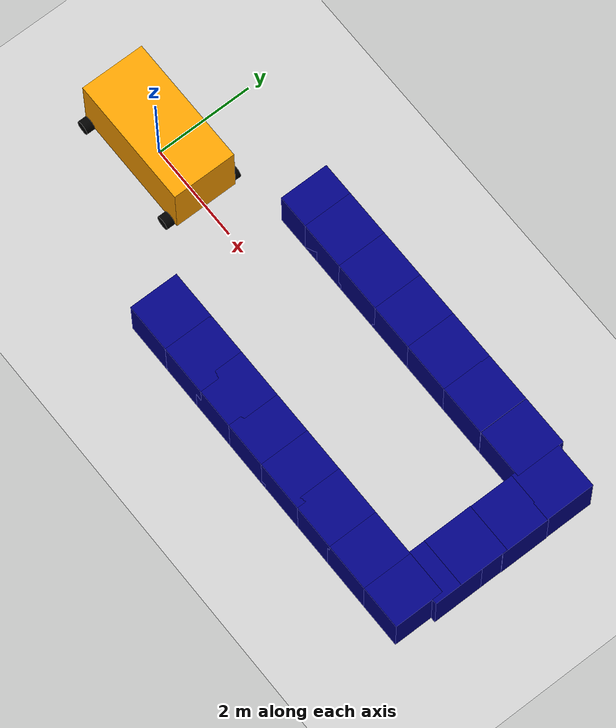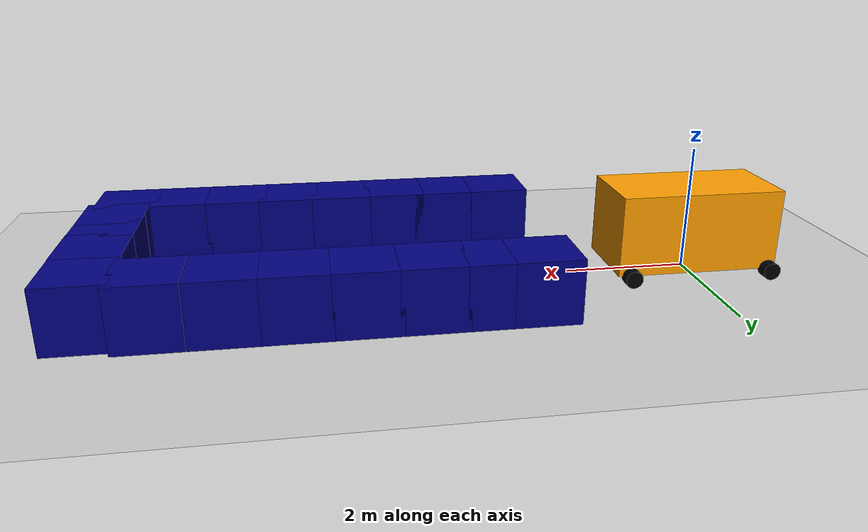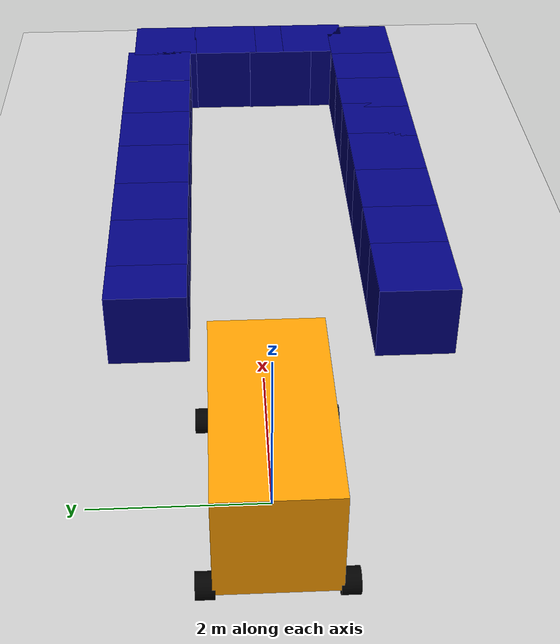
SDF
<sdf version='1.9'>
  <world name='empty'>
    <physics name='1ms' type='ignored'>
      <max_step_size>0.001</max_step_size>
      <real_time_factor>1</real_time_factor>
      <real_time_update_rate>1000</real_time_update_rate>
    </physics>
    <plugin name='gz::sim::systems::Physics' filename='ignition-gazebo-physics-system'/>
    <plugin name='gz::sim::systems::UserCommands' filename='ignition-gazebo-user-commands-system'/>
    <plugin name='gz::sim::systems::SceneBroadcaster' filename='ignition-gazebo-scene-broadcaster-system'/>
    <plugin name='gz::sim::systems::Contact' filename='ignition-gazebo-contact-system'/>
    <gravity>0 0 -9.8</gravity>
    <magnetic_field>6e-06 2.3e-05 -4.2e-05</magnetic_field>
    <atmosphere type='adiabatic'/>
    <scene>
      <ambient>0.4 0.4 0.4 1</ambient>
      <background>0.7 0.7 0.7 1</background>
      <shadows>true</shadows>
    </scene>
    <model name='ground_plane'>
      <static>true</static>
      <link name='link'>
        <collision name='collision'>
          <geometry>
            <plane>
              <normal>0 0 1</normal>
              <size>100 100</size>
            </plane>
          </geometry>
          <surface>
            <friction>
              <ode/>
            </friction>
            <bounce/>
            <contact/>
          </surface>
        </collision>
        <visual name='visual'>
          <geometry>
            <plane>
              <normal>0 0 1</normal>
              <size>100 100</size>
            </plane>
          </geometry>
          <material>
            <ambient>0.8 0.8 0.8 1</ambient>
            <diffuse>0.8 0.8 0.8 1</diffuse>
            <specular>0.8 0.8 0.8 1</specular>
          </material>
        </visual>
        <pose>0 0 0 0 -0 0</pose>
        <inertial>
          <pose>0 0 0 0 -0 0</pose>
          <mass>1</mass>
          <inertia>
            <ixx>1</ixx>
            <ixy>0</ixy>
            <ixz>0</ixz>
            <iyy>1</iyy>
            <iyz>0</iyz>
            <izz>1</izz>
          </inertia>
        </inertial>
        <enable_wind>false</enable_wind>
      </link>
      <pose>0 0 0 0 -0 0</pose>
      <self_collide>false</self_collide>
    </model>
    <model name='itls_gazebo_urdf'>
      <link name='base_link'>
        <inertial>
          <pose>-0.035 0 0.609609 0 -0 0</pose>
          <mass>1600</mass>
          <inertia>
            <ixx>515.00199999999995</ixx>
            <ixy>5.4711799999999995e-13</ixy>
            <ixz>-73.153099999999995</ixz>
            <iyy>2525.1799999999998</iyy>
            <iyz>-2.219e-17</iyz>
            <izz>2537.4200000000001</izz>
          </inertia>
        </inertial>
        <collision name='base_link_fixed_joint_lump__robot_center_collision'>
          <pose>0.04000000000000004 0 0.65025 0 0 0</pose>
          <geometry>
            <box>
              <size>2.64 1.3005 1.3</size>
            </box>
          </geometry>
          <surface>
            <friction>
              <ode/>
            </friction>
            <bounce/>
            <contact/>
          </surface>
        </collision>
        <collision name='base_link_fixed_joint_lump__rearwhl_l_link_collision_1'>
          <pose>-1.16 0.7202500000000001 0 1.570796326794896 0 0</pose>
          <geometry>
            <cylinder>
              <length>0.20000000000000001</length>
              <radius>0.14000000000000001</radius>
            </cylinder>
          </geometry>
          <surface>
            <friction>
              <ode/>
            </friction>
            <bounce/>
            <contact/>
          </surface>
        </collision>
        <collision name='base_link_fixed_joint_lump__rearwhl_r_link_collision_2'>
          <pose>-1.16 -0.7202500000000001 0 1.570796326794896 0 0</pose>
          <geometry>
            <cylinder>
              <length>0.20000000000000001</length>
              <radius>0.14000000000000001</radius>
            </cylinder>
          </geometry>
          <surface>
            <friction>
              <ode/>
            </friction>
            <bounce/>
            <contact/>
          </surface>
        </collision>
        <visual name='base_link_fixed_joint_lump__robot_center_visual'>
          <pose>0.04000000000000004 0 0.65025 0 0 0</pose>
          <geometry>
            <box>
              <size>2.64 1.3005 1.3</size>
            </box>
          </geometry>
          <material>
            <diffuse>1 0.625 0 1</diffuse>
            <ambient>1 0.625 0 1</ambient>
          </material>
        </visual>
        <visual name='base_link_fixed_joint_lump__rearwhl_l_link_visual_1'>
          <pose>-1.16 0.7202500000000001 0 1.570796326794896 0 0</pose>
          <geometry>
            <cylinder>
              <length>0.20000000000000001</length>
              <radius>0.14000000000000001</radius>
            </cylinder>
          </geometry>
          <material>
            <diffuse>0 0 0 1</diffuse>
            <ambient>0 0 0 1</ambient>
          </material>
        </visual>
        <visual name='base_link_fixed_joint_lump__rearwhl_r_link_visual_2'>
          <pose>-1.16 -0.7202500000000001 0 1.570796326794896 0 0</pose>
          <geometry>
            <cylinder>
              <length>0.20000000000000001</length>
              <radius>0.14000000000000001</radius>
            </cylinder>
          </geometry>
          <material>
            <diffuse>0 0 0 1</diffuse>
            <ambient>0 0 0 1</ambient>
          </material>
        </visual>
        <pose>0 0 0 0 -0 0</pose>
        <enable_wind>false</enable_wind>
      </link>
      <joint name='frontwhl_l_joint' type='revolute'>
        <pose>0 0 0 0 -0 0</pose>
        <parent>base_link</parent>
        <child>frontwhl_l_link</child>
        <axis>
          <xyz>0 1 0</xyz>
          <limit>
            <lower>-10000000000000000</lower>
            <upper>10000000000000000</upper>
            <effort>inf</effort>
            <velocity>inf</velocity>
            <stiffness>100000000</stiffness>
            <dissipation>1</dissipation>
          </limit>
          <dynamics>
            <spring_reference>0</spring_reference>
            <spring_stiffness>0</spring_stiffness>
            <damping>0</damping>
            <friction>0</friction>
          </dynamics>
        </axis>
      </joint>
      <link name='frontwhl_l_link'>
        <pose>1.16 0.72025 0 0 -0 0</pose>
        <inertial>
          <pose>0 0 0 1.5708 -0 0</pose>
          <mass>50</mass>
          <inertia>
            <ixx>0.41166700000000001</ixx>
            <ixy>0</ixy>
            <ixz>0</ixz>
            <iyy>0.41166700000000001</iyy>
            <iyz>0</iyz>
            <izz>0.48999999999999999</izz>
          </inertia>
        </inertial>
        <collision name='frontwhl_l_link_collision'>
          <pose>0 0 0 1.570796326794896 0 0</pose>
          <geometry>
            <cylinder>
              <length>0.20000000000000001</length>
              <radius>0.14000000000000001</radius>
            </cylinder>
          </geometry>
          <surface>
            <friction>
              <ode/>
            </friction>
            <bounce/>
            <contact/>
          </surface>
        </collision>
        <visual name='frontwhl_l_link_visual'>
          <pose>0 0 0 1.570796326794896 0 0</pose>
          <geometry>
            <cylinder>
              <length>0.20000000000000001</length>
              <radius>0.14000000000000001</radius>
            </cylinder>
          </geometry>
          <material>
            <diffuse>0 0 0 1</diffuse>
            <ambient>0 0 0 1</ambient>
          </material>
        </visual>
        <enable_wind>false</enable_wind>
      </link>
      <joint name='frontwhl_r_joint' type='revolute'>
        <pose>0 0 0 0 -0 0</pose>
        <parent>base_link</parent>
        <child>frontwhl_r_link</child>
        <axis>
          <xyz>0 1 0</xyz>
          <limit>
            <lower>-10000000000000000</lower>
            <upper>10000000000000000</upper>
            <effort>inf</effort>
            <velocity>inf</velocity>
            <stiffness>100000000</stiffness>
            <dissipation>1</dissipation>
          </limit>
          <dynamics>
            <spring_reference>0</spring_reference>
            <spring_stiffness>0</spring_stiffness>
            <damping>0</damping>
            <friction>0</friction>
          </dynamics>
        </axis>
      </joint>
      <link name='frontwhl_r_link'>
        <pose>1.16 -0.72025 0 0 -0 0</pose>
        <inertial>
          <pose>0 0 0 1.5708 -0 0</pose>
          <mass>50</mass>
          <inertia>
            <ixx>0.41166700000000001</ixx>
            <ixy>0</ixy>
            <ixz>0</ixz>
            <iyy>0.41166700000000001</iyy>
            <iyz>0</iyz>
            <izz>0.48999999999999999</izz>
          </inertia>
        </inertial>
        <collision name='frontwhl_r_link_collision'>
          <pose>0 0 0 1.570796326794896 0 0</pose>
          <geometry>
            <cylinder>
              <length>0.20000000000000001</length>
              <radius>0.14000000000000001</radius>
            </cylinder>
          </geometry>
          <surface>
            <friction>
              <ode/>
            </friction>
            <bounce/>
            <contact/>
          </surface>
        </collision>
        <visual name='frontwhl_r_link_visual'>
          <pose>0 0 0 1.570796326794896 0 0</pose>
          <geometry>
            <cylinder>
              <length>0.20000000000000001</length>
              <radius>0.14000000000000001</radius>
            </cylinder>
          </geometry>
          <material>
            <diffuse>0 0 0 1</diffuse>
            <ambient>0 0 0 1</ambient>
          </material>
        </visual>
        <enable_wind>false</enable_wind>
      </link>
      <frame name='base_joint' attached_to='base_link'>
        <pose>0 0 -0.14 0 -0 0</pose>
      </frame>
      <frame name='base_footprint' attached_to='base_joint'/>
      <frame name='base_link_T_base_link_back' attached_to='base_link'>
        <pose>-1.7645 0 0 0 -0 3.14159</pose>
      </frame>
      <frame name='base_link_back' attached_to='base_link_T_base_link_back'/>
      <frame name='base_link_T_base_link_front' attached_to='base_link'>
        <pose>2.3715 0 0 0 -0 0</pose>
      </frame>
      <frame name='base_link_front' attached_to='base_link_T_base_link_front'/>
      <frame name='base_link_T_robot_center' attached_to='base_link'>
        <pose>0.04 0 0.65025 0 -0 0</pose>
      </frame>
      <frame name='robot_center' attached_to='base_link_T_robot_center'/>
      <frame name='rearwhl_l_joint' attached_to='base_link'>
        <pose>-1.16 0.72025 0 0 -0 0</pose>
      </frame>
      <frame name='rearwhl_l_link' attached_to='rearwhl_l_joint'/>
      <frame name='rearwhl_r_joint' attached_to='base_link'>
        <pose>-1.16 -0.72025 0 0 -0 0</pose>
      </frame>
      <frame name='rearwhl_r_link' attached_to='rearwhl_r_joint'/>
      <pose>0 0 0.14 0 -0 0</pose>
      <static>false</static>
      <self_collide>false</self_collide>
    </model>
    <model name='box'>
      <pose>2.86 -1.9 0.5 0 -0 0</pose>
      <link name='box_link'>
        <inertial>
          <inertia>
            <ixx>0.16666</ixx>
            <ixy>0</ixy>
            <ixz>0</ixz>
            <iyy>0.16666</iyy>
            <iyz>0</iyz>
            <izz>0.16666</izz>
          </inertia>
          <mass>1</mass>
          <pose>0 0 0 0 -0 0</pose>
        </inertial>
        <collision name='box_collision'>
          <geometry>
            <box>
              <size>1 1 1</size>
            </box>
          </geometry>
          <surface>
            <friction>
              <ode/>
            </friction>
            <bounce/>
            <contact/>
          </surface>
        </collision>
        <visual name='box_visual'>
          <geometry>
            <box>
              <size>1 1 1</size>
            </box>
          </geometry>
          <material>
            <ambient>0 0 0.2 1</ambient>
            <diffuse>0 0 0.5 1</diffuse>
            <specular>0 0 0.3 1</specular>
          </material>
        </visual>
        <pose>0 0 0 0 -0 0</pose>
        <enable_wind>false</enable_wind>
      </link>
      <static>false</static>
      <self_collide>false</self_collide>
    </model>
    <model name='box_1'>
      <pose>2.86 1.4 0.5 0 -0 0</pose>
      <link name='box_link'>
        <inertial>
          <inertia>
            <ixx>0.16666</ixx>
            <ixy>0</ixy>
            <ixz>0</ixz>
            <iyy>0.16666</iyy>
            <iyz>0</iyz>
            <izz>0.16666</izz>
          </inertia>
          <mass>1</mass>
        </inertial>
        <collision name='box_collision'>
          <geometry>
            <box>
              <size>1 1 1</size>
            </box>
          </geometry>
          <surface>
            <friction>
              <ode/>
            </friction>
            <bounce/>
            <contact/>
          </surface>
        </collision>
        <visual name='box_visual'>
          <geometry>
            <box>
              <size>1 1 1</size>
            </box>
          </geometry>
          <material>
            <ambient>0 0 0.2 1</ambient>
            <diffuse>0 0 0.5 1</diffuse>
            <specular>0 0 0.3 1</specular>
          </material>
        </visual>
      </link>
      <static>false</static>
      <self_collide>false</self_collide>
    </model>
    <model name='box_2'>
      <pose>3.84 -1.9 0.5 0 -0 0</pose>
      <link name='box_link'>
        <inertial>
          <inertia>
            <ixx>0.16666</ixx>
            <ixy>0</ixy>
            <ixz>0</ixz>
            <iyy>0.16666</iyy>
            <iyz>0</iyz>
            <izz>0.16666</izz>
          </inertia>
          <mass>1</mass>
        </inertial>
        <collision name='box_collision'>
          <geometry>
            <box>
              <size>1 1 1</size>
            </box>
          </geometry>
          <surface>
            <friction>
              <ode/>
            </friction>
            <bounce/>
            <contact/>
          </surface>
        </collision>
        <visual name='box_visual'>
          <geometry>
            <box>
              <size>1 1 1</size>
            </box>
          </geometry>
          <material>
            <ambient>0 0 0.2 1</ambient>
            <diffuse>0 0 0.5 1</diffuse>
            <specular>0 0 0.3 1</specular>
          </material>
        </visual>
      </link>
      <static>false</static>
      <self_collide>false</self_collide>
    </model>
    <model name='box_3'>
      <pose>4.69 -1.9 0.5 0 -0 0</pose>
      <link name='box_link'>
        <inertial>
          <inertia>
            <ixx>0.16666</ixx>
            <ixy>0</ixy>
            <ixz>0</ixz>
            <iyy>0.16666</iyy>
            <iyz>0</iyz>
            <izz>0.16666</izz>
          </inertia>
          <mass>1</mass>
        </inertial>
        <collision name='box_collision'>
          <geometry>
            <box>
              <size>1 1 1</size>
            </box>
          </geometry>
          <surface>
            <friction>
              <ode/>
            </friction>
            <bounce/>
            <contact/>
          </surface>
        </collision>
        <visual name='box_visual'>
          <geometry>
            <box>
              <size>1 1 1</size>
            </box>
          </geometry>
          <material>
            <ambient>0 0 0.2 1</ambient>
            <diffuse>0 0 0.5 1</diffuse>
            <specular>0 0 0.3 1</specular>
          </material>
        </visual>
      </link>
      <static>false</static>
      <self_collide>false</self_collide>
    </model>
    <model name='box_1_1'>
      <pose>3.53 1.4 0.5 0 -0 0</pose>
      <link name='box_link'>
        <inertial>
          <inertia>
            <ixx>0.16666</ixx>
            <ixy>0</ixy>
            <ixz>0</ixz>
            <iyy>0.16666</iyy>
            <iyz>0</iyz>
            <izz>0.16666</izz>
          </inertia>
          <mass>1</mass>
        </inertial>
        <collision name='box_collision'>
          <geometry>
            <box>
              <size>1 1 1</size>
            </box>
          </geometry>
          <surface>
            <friction>
              <ode/>
            </friction>
            <bounce/>
            <contact/>
          </surface>
        </collision>
        <visual name='box_visual'>
          <geometry>
            <box>
              <size>1 1 1</size>
            </box>
          </geometry>
          <material>
            <ambient>0 0 0.2 1</ambient>
            <diffuse>0 0 0.5 1</diffuse>
            <specular>0 0 0.3 1</specular>
          </material>
        </visual>
      </link>
      <static>false</static>
      <self_collide>false</self_collide>
    </model>
    <model name='box_1_2'>
      <pose>4.48 1.4 0.5 0 -0 0</pose>
      <link name='box_link'>
        <inertial>
          <inertia>
            <ixx>0.16666</ixx>
            <ixy>0</ixy>
            <ixz>0</ixz>
            <iyy>0.16666</iyy>
            <iyz>0</iyz>
            <izz>0.16666</izz>
          </inertia>
          <mass>1</mass>
        </inertial>
        <collision name='box_collision'>
          <geometry>
            <box>
              <size>1 1 1</size>
            </box>
          </geometry>
          <surface>
            <friction>
              <ode/>
            </friction>
            <bounce/>
            <contact/>
          </surface>
        </collision>
        <visual name='box_visual'>
          <geometry>
            <box>
              <size>1 1 1</size>
            </box>
          </geometry>
          <material>
            <ambient>0 0 0.2 1</ambient>
            <diffuse>0 0 0.5 1</diffuse>
            <specular>0 0 0.3 1</specular>
          </material>
        </visual>
      </link>
      <static>false</static>
      <self_collide>false</self_collide>
    </model>
    <model name='box_1_3'>
      <pose>5.42 1.4 0.5 0 -0 0</pose>
      <link name='box_link'>
        <inertial>
          <inertia>
            <ixx>0.16666</ixx>
            <ixy>0</ixy>
            <ixz>0</ixz>
            <iyy>0.16666</iyy>
            <iyz>0</iyz>
            <izz>0.16666</izz>
          </inertia>
          <mass>1</mass>
        </inertial>
        <collision name='box_collision'>
          <geometry>
            <box>
              <size>1 1 1</size>
            </box>
          </geometry>
          <surface>
            <friction>
              <ode/>
            </friction>
            <bounce/>
            <contact/>
          </surface>
        </collision>
        <visual name='box_visual'>
          <geometry>
            <box>
              <size>1 1 1</size>
            </box>
          </geometry>
          <material>
            <ambient>0 0 0.2 1</ambient>
            <diffuse>0 0 0.5 1</diffuse>
            <specular>0 0 0.3 1</specular>
          </material>
        </visual>
      </link>
      <static>false</static>
      <self_collide>false</self_collide>
    </model>
    <model name='box_1_4'>
      <pose>5.62 -1.9 0.5 0 -0 0</pose>
      <link name='box_link'>
        <inertial>
          <inertia>
            <ixx>0.16666</ixx>
            <ixy>0</ixy>
            <ixz>0</ixz>
            <iyy>0.16666</iyy>
            <iyz>0</iyz>
            <izz>0.16666</izz>
          </inertia>
          <mass>1</mass>
        </inertial>
        <collision name='box_collision'>
          <geometry>
            <box>
              <size>1 1 1</size>
            </box>
          </geometry>
          <surface>
            <friction>
              <ode/>
            </friction>
            <bounce/>
            <contact/>
          </surface>
        </collision>
        <visual name='box_visual'>
          <geometry>
            <box>
              <size>1 1 1</size>
            </box>
          </geometry>
          <material>
            <ambient>0 0 0.2 1</ambient>
            <diffuse>0 0 0.5 1</diffuse>
            <specular>0 0 0.3 1</specular>
          </material>
        </visual>
      </link>
      <static>false</static>
      <self_collide>false</self_collide>
    </model>
    <model name='box_1_5'>
      <pose>6.52 -1.9 0.5 0 -0 0</pose>
      <link name='box_link'>
        <inertial>
          <inertia>
            <ixx>0.16666</ixx>
            <ixy>0</ixy>
            <ixz>0</ixz>
            <iyy>0.16666</iyy>
            <iyz>0</iyz>
            <izz>0.16666</izz>
          </inertia>
          <mass>1</mass>
        </inertial>
        <collision name='box_collision'>
          <geometry>
            <box>
              <size>1 1 1</size>
            </box>
          </geometry>
          <surface>
            <friction>
              <ode/>
            </friction>
            <bounce/>
            <contact/>
          </surface>
        </collision>
        <visual name='box_visual'>
          <geometry>
            <box>
              <size>1 1 1</size>
            </box>
          </geometry>
          <material>
            <ambient>0 0 0.2 1</ambient>
            <diffuse>0 0 0.5 1</diffuse>
            <specular>0 0 0.3 1</specular>
          </material>
        </visual>
      </link>
      <static>false</static>
      <self_collide>false</self_collide>
    </model>
    <model name='box_1_6'>
      <pose>6.39 1.4 0.5 0 -0 0</pose>
      <link name='box_link'>
        <inertial>
          <inertia>
            <ixx>0.16666</ixx>
            <ixy>0</ixy>
            <ixz>0</ixz>
            <iyy>0.16666</iyy>
            <iyz>0</iyz>
            <izz>0.16666</izz>
          </inertia>
          <mass>1</mass>
        </inertial>
        <collision name='box_collision'>
          <geometry>
            <box>
              <size>1 1 1</size>
            </box>
          </geometry>
          <surface>
            <friction>
              <ode/>
            </friction>
            <bounce/>
            <contact/>
          </surface>
        </collision>
        <visual name='box_visual'>
          <geometry>
            <box>
              <size>1 1 1</size>
            </box>
          </geometry>
          <material>
            <ambient>0 0 0.2 1</ambient>
            <diffuse>0 0 0.5 1</diffuse>
            <specular>0 0 0.3 1</specular>
          </material>
        </visual>
      </link>
      <static>false</static>
      <self_collide>false</self_collide>
    </model>
    <model name='box_1_4_1'>
      <pose>7.4 -1.9 0.5 0 -0 0</pose>
      <link name='box_link'>
        <inertial>
          <inertia>
            <ixx>0.16666</ixx>
            <ixy>0</ixy>
            <ixz>0</ixz>
            <iyy>0.16666</iyy>
            <iyz>0</iyz>
            <izz>0.16666</izz>
          </inertia>
          <mass>1</mass>
        </inertial>
        <collision name='box_collision'>
          <geometry>
            <box>
              <size>1 1 1</size>
            </box>
          </geometry>
          <surface>
            <friction>
              <ode/>
            </friction>
            <bounce/>
            <contact/>
          </surface>
        </collision>
        <visual name='box_visual'>
          <geometry>
            <box>
              <size>1 1 1</size>
            </box>
          </geometry>
          <material>
            <ambient>0 0 0.2 1</ambient>
            <diffuse>0 0 0.5 1</diffuse>
            <specular>0 0 0.3 1</specular>
          </material>
        </visual>
      </link>
      <static>false</static>
      <self_collide>false</self_collide>
    </model>
    <model name='box_1_4_2'>
      <pose>8.34 -1.9 0.5 0 -0 0</pose>
      <link name='box_link'>
        <inertial>
          <inertia>
            <ixx>0.16666</ixx>
            <ixy>0</ixy>
            <ixz>0</ixz>
            <iyy>0.16666</iyy>
            <iyz>0</iyz>
            <izz>0.16666</izz>
          </inertia>
          <mass>1</mass>
        </inertial>
        <collision name='box_collision'>
          <geometry>
            <box>
              <size>1 1 1</size>
            </box>
          </geometry>
          <surface>
            <friction>
              <ode/>
            </friction>
            <bounce/>
            <contact/>
          </surface>
        </collision>
        <visual name='box_visual'>
          <geometry>
            <box>
              <size>1 1 1</size>
            </box>
          </geometry>
          <material>
            <ambient>0 0 0.2 1</ambient>
            <diffuse>0 0 0.5 1</diffuse>
            <specular>0 0 0.3 1</specular>
          </material>
        </visual>
      </link>
      <static>false</static>
      <self_collide>false</self_collide>
    </model>
    <model name='box_1_4_3'>
      <pose>9.21 -1.9 0.5 0 -0 0</pose>
      <link name='box_link'>
        <inertial>
          <inertia>
            <ixx>0.16666</ixx>
            <ixy>0</ixy>
            <ixz>0</ixz>
            <iyy>0.16666</iyy>
            <iyz>0</iyz>
            <izz>0.16666</izz>
          </inertia>
          <mass>1</mass>
        </inertial>
        <collision name='box_collision'>
          <geometry>
            <box>
              <size>1 1 1</size>
            </box>
          </geometry>
          <surface>
            <friction>
              <ode/>
            </friction>
            <bounce/>
            <contact/>
          </surface>
        </collision>
        <visual name='box_visual'>
          <geometry>
            <box>
              <size>1 1 1</size>
            </box>
          </geometry>
          <material>
            <ambient>0 0 0.2 1</ambient>
            <diffuse>0 0 0.5 1</diffuse>
            <specular>0 0 0.3 1</specular>
          </material>
        </visual>
      </link>
      <static>false</static>
      <self_collide>false</self_collide>
    </model>
    <model name='box_1_4_4'>
      <pose>7.38 1.4 0.5 0 -0 0</pose>
      <link name='box_link'>
        <inertial>
          <inertia>
            <ixx>0.16666</ixx>
            <ixy>0</ixy>
            <ixz>0</ixz>
            <iyy>0.16666</iyy>
            <iyz>0</iyz>
            <izz>0.16666</izz>
          </inertia>
          <mass>1</mass>
        </inertial>
        <collision name='box_collision'>
          <geometry>
            <box>
              <size>1 1 1</size>
            </box>
          </geometry>
          <surface>
            <friction>
              <ode/>
            </friction>
            <bounce/>
            <contact/>
          </surface>
        </collision>
        <visual name='box_visual'>
          <geometry>
            <box>
              <size>1 1 1</size>
            </box>
          </geometry>
          <material>
            <ambient>0 0 0.2 1</ambient>
            <diffuse>0 0 0.5 1</diffuse>
            <specular>0 0 0.3 1</specular>
          </material>
        </visual>
      </link>
      <static>false</static>
      <self_collide>false</self_collide>
    </model>
    <model name='box_1_4_5'>
      <pose>8.39 1.4 0.5 0 -0 0</pose>
      <link name='box_link'>
        <inertial>
          <inertia>
            <ixx>0.16666</ixx>
            <ixy>0</ixy>
            <ixz>0</ixz>
            <iyy>0.16666</iyy>
            <iyz>0</iyz>
            <izz>0.16666</izz>
          </inertia>
          <mass>1</mass>
        </inertial>
        <collision name='box_collision'>
          <geometry>
            <box>
              <size>1 1 1</size>
            </box>
          </geometry>
          <surface>
            <friction>
              <ode/>
            </friction>
            <bounce/>
            <contact/>
          </surface>
        </collision>
        <visual name='box_visual'>
          <geometry>
            <box>
              <size>1 1 1</size>
            </box>
          </geometry>
          <material>
            <ambient>0 0 0.2 1</ambient>
            <diffuse>0 0 0.5 1</diffuse>
            <specular>0 0 0.3 1</specular>
          </material>
        </visual>
      </link>
      <static>false</static>
      <self_collide>false</self_collide>
    </model>
    <model name='box_1_4_6'>
      <pose>9.31 1.3 0.5 0 -0 0</pose>
      <link name='box_link'>
        <inertial>
          <inertia>
            <ixx>0.16666</ixx>
            <ixy>0</ixy>
            <ixz>0</ixz>
            <iyy>0.16666</iyy>
            <iyz>0</iyz>
            <izz>0.16666</izz>
          </inertia>
          <mass>1</mass>
        </inertial>
        <collision name='box_collision'>
          <geometry>
            <box>
              <size>1 1 1</size>
            </box>
          </geometry>
          <surface>
            <friction>
              <ode/>
            </friction>
            <bounce/>
            <contact/>
          </surface>
        </collision>
        <visual name='box_visual'>
          <geometry>
            <box>
              <size>1 1 1</size>
            </box>
          </geometry>
          <material>
            <ambient>0 0 0.2 1</ambient>
            <diffuse>0 0 0.5 1</diffuse>
            <specular>0 0 0.3 1</specular>
          </material>
        </visual>
      </link>
      <static>false</static>
      <self_collide>false</self_collide>
    </model>
    <model name='box_1_4_7'>
      <pose>9.3171 0.322463 0.5 0 -0 0</pose>
      <link name='box_link'>
        <inertial>
          <inertia>
            <ixx>0.16666</ixx>
            <ixy>0</ixy>
            <ixz>0</ixz>
            <iyy>0.16666</iyy>
            <iyz>0</iyz>
            <izz>0.16666</izz>
          </inertia>
          <mass>1</mass>
        </inertial>
        <collision name='box_collision'>
          <geometry>
            <box>
              <size>1 1 1</size>
            </box>
          </geometry>
          <surface>
            <friction>
              <ode/>
            </friction>
            <bounce/>
            <contact/>
          </surface>
        </collision>
        <visual name='box_visual'>
          <geometry>
            <box>
              <size>1 1 1</size>
            </box>
          </geometry>
          <material>
            <ambient>0 0 0.2 1</ambient>
            <diffuse>0 0 0.5 1</diffuse>
            <specular>0 0 0.3 1</specular>
          </material>
        </visual>
      </link>
      <static>false</static>
      <self_collide>false</self_collide>
    </model>
    <model name='box_1_4_8'>
      <pose>9.30943 -0.575364 0.5 0 -0 0</pose>
      <link name='box_link'>
        <inertial>
          <inertia>
            <ixx>0.16666</ixx>
            <ixy>0</ixy>
            <ixz>0</ixz>
            <iyy>0.16666</iyy>
            <iyz>0</iyz>
            <izz>0.16666</izz>
          </inertia>
          <mass>1</mass>
        </inertial>
        <collision name='box_collision'>
          <geometry>
            <box>
              <size>1 1 1</size>
            </box>
          </geometry>
          <surface>
            <friction>
              <ode/>
            </friction>
            <bounce/>
            <contact/>
          </surface>
        </collision>
        <visual name='box_visual'>
          <geometry>
            <box>
              <size>1 1 1</size>
            </box>
          </geometry>
          <material>
            <ambient>0 0 0.2 1</ambient>
            <diffuse>0 0 0.5 1</diffuse>
            <specular>0 0 0.3 1</specular>
          </material>
        </visual>
      </link>
      <static>false</static>
      <self_collide>false</self_collide>
    </model>
    <model name='box_1_4_9'>
      <pose>9.31003 -1.12307 0.5 0 -0 0</pose>
      <link name='box_link'>
        <inertial>
          <inertia>
            <ixx>0.16666</ixx>
            <ixy>0</ixy>
            <ixz>0</ixz>
            <iyy>0.16666</iyy>
            <iyz>0</iyz>
            <izz>0.16666</izz>
          </inertia>
          <mass>1</mass>
        </inertial>
        <collision name='box_collision'>
          <geometry>
            <box>
              <size>1 1 1</size>
            </box>
          </geometry>
          <surface>
            <friction>
              <ode/>
            </friction>
            <bounce/>
            <contact/>
          </surface>
        </collision>
        <visual name='box_visual'>
          <geometry>
            <box>
              <size>1 1 1</size>
            </box>
          </geometry>
          <material>
            <ambient>0 0 0.2 1</ambient>
            <diffuse>0 0 0.5 1</diffuse>
            <specular>0 0 0.3 1</specular>
          </material>
        </visual>
      </link>
      <static>false</static>
      <self_collide>false</self_collide>
    </model>
    <light name='sun' type='directional'>
      <pose>0 0 10 0 -0 0</pose>
      <cast_shadows>true</cast_shadows>
      <intensity>1</intensity>
      <direction>-0.5 0.1 -0.9</direction>
      <diffuse>0.8 0.8 0.8 1</diffuse>
      <specular>0.2 0.2 0.2 1</specular>
      <attenuation>
        <range>1000</range>
        <linear>0.01</linear>
        <constant>0.90000000000000002</constant>
        <quadratic>0.001</quadratic>
      </attenuation>
      <spot>
        <inner_angle>0</inner_angle>
        <outer_angle>0</outer_angle>
        <falloff>0</falloff>
      </spot>
    </light>
  </world>
</sdf>
